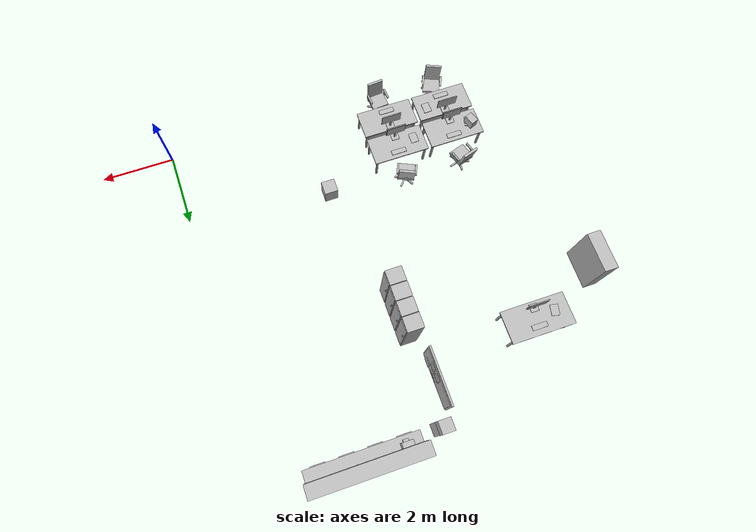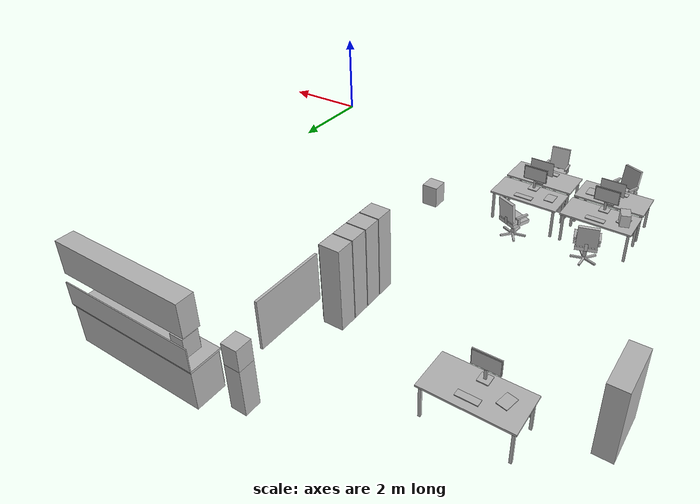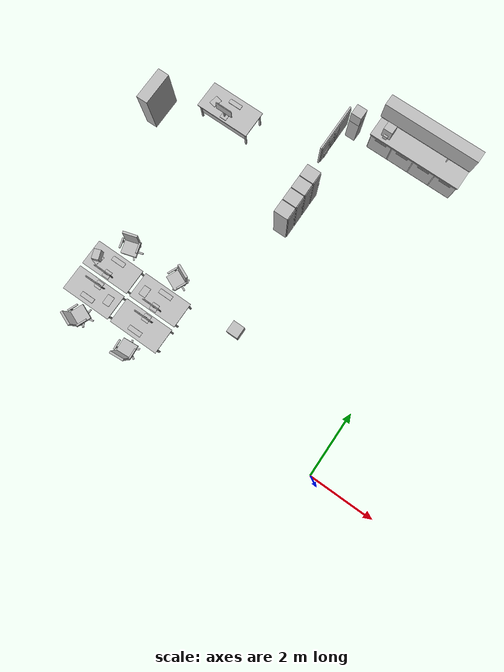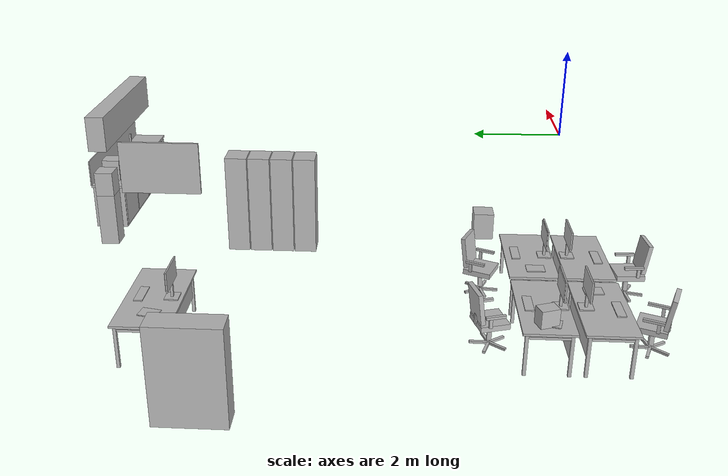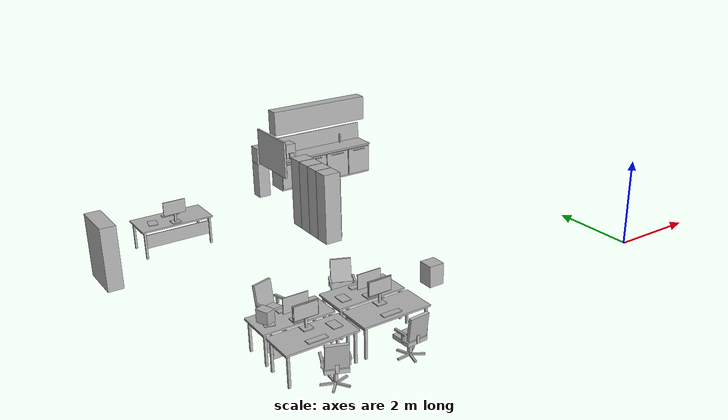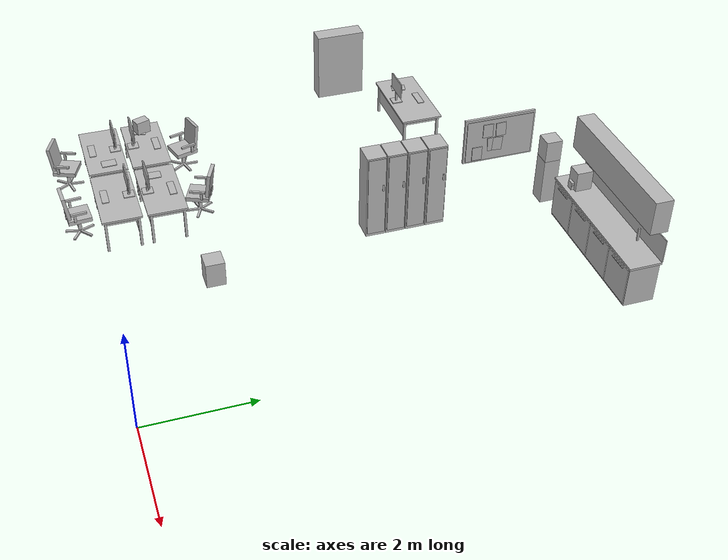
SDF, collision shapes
<sdf version="1.10">
 <model name="office_scene">
  <static>true</static>
  <link name="baseball_01">
   <pose>-9.40000 6.05000 1.03000 0.00000 0.00000 0.00000</pose>
   <visual name="baseball_01_visual">
    <geometry><mesh><uri>model://office_scene/meshes/baseball_01.glb</uri></mesh></geometry>
   </visual>
  </link>
  <link name="coffee_machine">
   <pose>-3.00000 9.60000 0.90000 0.00000 0.00000 0.00000</pose>
   <visual name="coffee_machine_visual">
    <geometry><mesh><uri>model://office_scene/meshes/coffee_machine.glb</uri></mesh></geometry>
   </visual>
   <collision name="coffee_machine_c0">
    <pose>-0.60379 -0.08456 -0.53333 0.00000 -0.00000 0.00000</pose>
    <geometry><box><size>0.3000 0.3400 0.4200</size></box></geometry>
   </collision>
   <collision name="coffee_machine_c1">
    <pose>-0.60379 -0.24456 -0.66333 0.00000 -0.00000 0.00000</pose>
    <geometry><box><size>0.1400 0.1400 0.1600</size></box></geometry>
   </collision>
   <collision name="coffee_machine_c2">
    <pose>-0.60379 -0.24456 -0.67333 0.00000 -0.00000 0.00000</pose>
    <geometry><box><size>0.1400 0.1200 0.1000</size></box></geometry>
   </collision>
  </link>
  <link name="cone_yellow">
   <pose>-3.40000 2.20000 0.26000 0.00000 0.00000 0.00000</pose>
   <visual name="cone_yellow_visual">
    <geometry><mesh><uri>model://office_scene/meshes/cone_yellow.glb</uri></mesh></geometry>
   </visual>
   <collision name="cone_yellow_c0">
    <pose>-0.60379 -0.08456 -0.72333 0.00000 -0.00000 0.00000</pose>
    <geometry><box><size>0.3800 0.3800 0.5200</size></box></geometry>
   </collision>
  </link>
  <link name="kitchen_counter">
   <pose>-1.90000 9.60000 0.00000 0.00000 0.00000 0.00000</pose>
   <visual name="kitchen_counter_visual">
    <geometry><mesh><uri>model://office_scene/meshes/kitchen_counter.glb</uri></mesh></geometry>
   </visual>
   <collision name="kitchen_counter_c0">
    <pose>-0.60379 -0.08456 -0.31333 0.00000 -0.00000 0.00000</pose>
    <geometry><box><size>3.0000 0.6200 0.8600</size></box></geometry>
   </collision>
   <collision name="kitchen_counter_c1">
    <pose>-1.72879 -0.40456 -0.30333 0.00000 -0.00000 0.00000</pose>
    <geometry><box><size>0.7200 0.0200 0.7800</size></box></geometry>
   </collision>
   <collision name="kitchen_counter_c2">
    <pose>-0.97879 -0.40456 -0.30333 0.00000 -0.00000 0.00000</pose>
    <geometry><box><size>0.7200 0.0200 0.7800</size></box></geometry>
   </collision>
   <collision name="kitchen_counter_c3">
    <pose>-0.22879 -0.40456 -0.30333 0.00000 -0.00000 0.00000</pose>
    <geometry><box><size>0.7200 0.0200 0.7800</size></box></geometry>
   </collision>
   <collision name="kitchen_counter_c4">
    <pose>0.52121 -0.40456 -0.30333 0.00000 -0.00000 0.00000</pose>
    <geometry><box><size>0.7200 0.0200 0.7800</size></box></geometry>
   </collision>
   <collision name="kitchen_counter_c5">
    <pose>-1.72879 -0.42956 0.03667 0.00000 -0.00000 0.00000</pose>
    <geometry><box><size>0.4000 0.0200 0.0200</size></box></geometry>
   </collision>
   <collision name="kitchen_counter_c6">
    <pose>-0.97879 -0.42956 0.03667 0.00000 -0.00000 0.00000</pose>
    <geometry><box><size>0.4000 0.0200 0.0200</size></box></geometry>
   </collision>
   <collision name="kitchen_counter_c7">
    <pose>-0.22879 -0.42956 0.03667 0.00000 -0.00000 0.00000</pose>
    <geometry><box><size>0.4000 0.0200 0.0200</size></box></geometry>
   </collision>
   <collision name="kitchen_counter_c8">
    <pose>0.52121 -0.42956 0.03667 0.00000 -0.00000 0.00000</pose>
    <geometry><box><size>0.4000 0.0200 0.0200</size></box></geometry>
   </collision>
   <collision name="kitchen_counter_c9">
    <pose>0.19621 -0.08456 0.14667 0.00000 -0.00000 0.00000</pose>
    <geometry><box><size>0.5000 0.4000 0.0200</size></box></geometry>
   </collision>
   <collision name="kitchen_counter_c10">
    <pose>-0.60379 0.24544 0.40667 0.00000 -0.00000 0.00000</pose>
    <geometry><box><size>3.0600 0.0200 0.5000</size></box></geometry>
   </collision>
   <collision name="kitchen_counter_c11">
    <pose>0.19621 0.13544 0.29667 0.00000 -0.00000 0.00000</pose>
    <geometry><box><size>0.0360 0.0360 0.2800</size></box></geometry>
   </collision>
   <collision name="kitchen_counter_c12">
    <pose>-0.60379 -0.08456 0.13667 0.00000 -0.00000 0.00000</pose>
    <geometry><box><size>3.0600 0.6600 0.0450</size></box></geometry>
   </collision>
   <collision name="kitchen_counter_c13">
    <pose>-0.60379 0.05544 1.20667 0.00000 -0.00000 0.00000</pose>
    <geometry><box><size>3.0000 0.3600 0.7000</size></box></geometry>
   </collision>
  </link>
  <link name="lockers">
   <pose>-4.05000 6.20000 0.00000 0.00000 0.00000 0.00000</pose>
   <visual name="lockers_visual">
    <geometry><mesh><uri>model://office_scene/meshes/lockers.glb</uri></mesh></geometry>
   </visual>
   <collision name="lockers_c0">
    <pose>-0.60379 -0.68456 0.18167 0.00000 -0.00000 0.00000</pose>
    <geometry><box><size>0.4500 0.4000 1.8500</size></box></geometry>
   </collision>
   <collision name="lockers_c1">
    <pose>-0.60379 -0.26456 0.18167 0.00000 -0.00000 0.00000</pose>
    <geometry><box><size>0.4500 0.4000 1.8500</size></box></geometry>
   </collision>
   <collision name="lockers_c2">
    <pose>-0.60379 0.15544 0.18167 0.00000 -0.00000 0.00000</pose>
    <geometry><box><size>0.4500 0.4000 1.8500</size></box></geometry>
   </collision>
   <collision name="lockers_c3">
    <pose>-0.60379 0.57544 0.18167 0.00000 -0.00000 0.00000</pose>
    <geometry><box><size>0.4500 0.4000 1.8500</size></box></geometry>
   </collision>
   <collision name="lockers_c4">
    <pose>-0.36379 -0.68456 0.20667 0.00000 -0.00000 0.00000</pose>
    <geometry><box><size>0.0200 0.3600 1.7500</size></box></geometry>
   </collision>
   <collision name="lockers_c5">
    <pose>-0.36379 -0.26456 0.20667 0.00000 -0.00000 0.00000</pose>
    <geometry><box><size>0.0200 0.3600 1.7500</size></box></geometry>
   </collision>
   <collision name="lockers_c6">
    <pose>-0.36379 0.15544 0.20667 0.00000 -0.00000 0.00000</pose>
    <geometry><box><size>0.0200 0.3600 1.7500</size></box></geometry>
   </collision>
   <collision name="lockers_c7">
    <pose>-0.36379 0.57544 0.20667 0.00000 -0.00000 0.00000</pose>
    <geometry><box><size>0.0200 0.3600 1.7500</size></box></geometry>
   </collision>
   <collision name="lockers_c8">
    <pose>-0.34379 -0.55456 0.40667 0.00000 -0.00000 0.00000</pose>
    <geometry><box><size>0.0200 0.0300 0.1400</size></box></geometry>
   </collision>
   <collision name="lockers_c9">
    <pose>-0.34379 -0.13456 0.40667 0.00000 -0.00000 0.00000</pose>
    <geometry><box><size>0.0200 0.0300 0.1400</size></box></geometry>
   </collision>
   <collision name="lockers_c10">
    <pose>-0.34379 0.28544 0.40667 0.00000 -0.00000 0.00000</pose>
    <geometry><box><size>0.0200 0.0300 0.1400</size></box></geometry>
   </collision>
   <collision name="lockers_c11">
    <pose>-0.34379 0.70544 0.40667 0.00000 -0.00000 0.00000</pose>
    <geometry><box><size>0.0200 0.0300 0.1400</size></box></geometry>
   </collision>
  </link>
  <link name="noticeboard">
   <pose>-4.14000 8.30000 1.60000 0.00000 0.00000 0.00000</pose>
   <visual name="noticeboard_visual">
    <geometry><mesh><uri>model://office_scene/meshes/noticeboard.glb</uri></mesh></geometry>
   </visual>
   <collision name="noticeboard_c0">
    <pose>-0.58379 -0.07582 -0.52668 0.04067 -0.00000 0.00000</pose>
    <geometry><box><size>0.0200 0.2100 0.2970</size></box></geometry>
   </collision>
   <collision name="noticeboard_c1">
    <pose>-0.58379 -0.35318 -0.52061 -0.00277 -0.00000 0.00000</pose>
    <geometry><box><size>0.0200 0.2100 0.2970</size></box></geometry>
   </collision>
   <collision name="noticeboard_c2">
    <pose>-0.58379 -0.55973 -1.02131 -0.00166 -0.00000 0.00000</pose>
    <geometry><box><size>0.0200 0.2100 0.2970</size></box></geometry>
   </collision>
   <collision name="noticeboard_c3">
    <pose>-0.58379 -0.13380 -0.85423 -0.07186 -0.00000 0.00000</pose>
    <geometry><box><size>0.0200 0.2100 0.2970</size></box></geometry>
   </collision>
   <collision name="noticeboard_c4">
    <pose>-0.58379 -0.24060 -0.84632 0.06805 -0.00000 0.00000</pose>
    <geometry><box><size>0.0200 0.2100 0.2970</size></box></geometry>
   </collision>
   <collision name="noticeboard_c5">
    <pose>-0.60379 -0.08456 -0.74333 0.00000 -0.00000 0.00000</pose>
    <geometry><box><size>0.0200 1.4200 0.9200</size></box></geometry>
   </collision>
   <collision name="noticeboard_c6">
    <pose>-0.64379 -0.08456 -0.74333 0.00000 -0.00000 0.00000</pose>
    <geometry><box><size>0.0500 1.5000 1.0000</size></box></geometry>
   </collision>
  </link>
  <link name="podA_workstation0">
   <pose>-7.35000 1.65000 0.00000 0.00000 0.00000 0.00000</pose>
   <visual name="podA_workstation0_visual">
    <geometry><mesh><uri>model://office_scene/meshes/podA_workstation0.glb</uri></mesh></geometry>
   </visual>
   <collision name="podA_workstation0_c0">
    <pose>-0.85870 0.64047 -0.07333 0.00000 -0.00000 0.28915</pose>
    <geometry><box><size>0.0500 0.3200 0.0400</size></box></geometry>
   </collision>
   <collision name="podA_workstation0_c1">
    <pose>-0.36029 0.78874 -0.07333 0.00000 -0.00000 0.28915</pose>
    <geometry><box><size>0.0500 0.3200 0.0400</size></box></geometry>
   </collision>
   <collision name="podA_workstation0_c2">
    <pose>-0.88151 0.71715 -0.16333 0.00000 -0.00000 0.28915</pose>
    <geometry><box><size>0.0400 0.0500 0.1600</size></box></geometry>
   </collision>
   <collision name="podA_workstation0_c3">
    <pose>-0.38310 0.86542 -0.16333 0.00000 -0.00000 0.28915</pose>
    <geometry><box><size>0.0400 0.0500 0.1600</size></box></geometry>
   </collision>
   <collision name="podA_workstation0_c4">
    <pose>-0.67080 0.92068 0.04667 -0.13963 -0.00000 0.28915</pose>
    <geometry><box><size>0.4500 0.0700 0.5200</size></box></geometry>
   </collision>
   <collision name="podA_workstation0_c5">
    <pose>-0.66652 0.90630 -0.22333 0.00000 -0.00000 0.28915</pose>
    <geometry><box><size>0.0700 0.0600 0.1800</size></box></geometry>
   </collision>
   <collision name="podA_workstation0_c6">
    <pose>-0.60379 0.69544 -0.47333 0.00000 -0.00000 0.00000</pose>
    <geometry><box><size>0.0700 0.0700 0.2800</size></box></geometry>
   </collision>
   <collision name="podA_workstation0_c7">
    <pose>-0.60379 0.69544 -0.28333 0.00000 -0.00000 0.28915</pose>
    <geometry><box><size>0.4800 0.4700 0.0900</size></box></geometry>
   </collision>
   <collision name="podA_workstation0_c8">
    <pose>-0.46002 0.73821 -0.67333 0.00000 -0.00000 0.28915</pose>
    <geometry><box><size>0.3000 0.0450 0.0350</size></box></geometry>
   </collision>
   <collision name="podA_workstation0_c9">
    <pose>-0.60004 0.84539 -0.67333 0.00000 -0.00000 1.54578</pose>
    <geometry><box><size>0.3000 0.0450 0.0350</size></box></geometry>
   </collision>
   <collision name="podA_workstation0_c10">
    <pose>-0.74524 0.74534 -0.67333 0.00000 -0.00000 2.80242</pose>
    <geometry><box><size>0.3000 0.0450 0.0350</size></box></geometry>
   </collision>
   <collision name="podA_workstation0_c11">
    <pose>-0.69496 0.57633 -0.67333 0.00000 -0.00000 -2.22413</pose>
    <geometry><box><size>0.3000 0.0450 0.0350</size></box></geometry>
   </collision>
   <collision name="podA_workstation0_c12">
    <pose>-0.51868 0.57192 -0.67333 0.00000 -0.00000 -0.96749</pose>
    <geometry><box><size>0.3000 0.0450 0.0350</size></box></geometry>
   </collision>
   <collision name="podA_workstation0_c13">
    <pose>-0.55379 0.13544 0.00567 0.00000 -0.00000 -3.14159</pose>
    <geometry><box><size>0.4300 0.1400 0.0200</size></box></geometry>
   </collision>
   <collision name="podA_workstation0_c14">
    <pose>-1.10379 -0.13456 0.00267 0.00000 -0.00000 2.87056</pose>
    <geometry><box><size>0.2200 0.3000 0.0200</size></box></geometry>
   </collision>
   <collision name="podA_workstation0_c15">
    <pose>0.12621 0.24544 -0.39333 0.00000 -0.00000 -3.14159</pose>
    <geometry><box><size>0.0500 0.0500 0.7000</size></box></geometry>
   </collision>
   <collision name="podA_workstation0_c16">
    <pose>0.12621 -0.41456 -0.39333 0.00000 -0.00000 -3.14159</pose>
    <geometry><box><size>0.0500 0.0500 0.7000</size></box></geometry>
   </collision>
   <collision name="podA_workstation0_c17">
    <pose>-1.33379 0.24544 -0.39333 0.00000 -0.00000 -3.14159</pose>
    <geometry><box><size>0.0500 0.0500 0.7000</size></box></geometry>
   </collision>
   <collision name="podA_workstation0_c18">
    <pose>-1.33379 -0.41456 -0.39333 0.00000 -0.00000 -3.14159</pose>
    <geometry><box><size>0.0500 0.0500 0.7000</size></box></geometry>
   </collision>
   <collision name="podA_workstation0_c19">
    <pose>-0.60379 -0.40456 -0.30333 0.00000 -0.00000 -3.14159</pose>
    <geometry><box><size>1.4000 0.0200 0.3400</size></box></geometry>
   </collision>
   <collision name="podA_workstation0_c20">
    <pose>0.12621 -0.08456 -0.10333 0.00000 -0.00000 -3.14159</pose>
    <geometry><box><size>0.0400 0.6600 0.0400</size></box></geometry>
   </collision>
   <collision name="podA_workstation0_c21">
    <pose>-1.33379 -0.08456 -0.10333 0.00000 -0.00000 -3.14159</pose>
    <geometry><box><size>0.0400 0.6600 0.0400</size></box></geometry>
   </collision>
   <collision name="podA_workstation0_c22">
    <pose>-0.60379 -0.08456 -0.02233 0.00000 -0.00000 -3.14159</pose>
    <geometry><box><size>1.6000 0.8000 0.0380</size></box></geometry>
   </collision>
   <collision name="podA_workstation0_c23">
    <pose>-0.60379 -0.34456 0.00667 0.00000 -0.00000 0.00000</pose>
    <geometry><box><size>0.2200 0.2200 0.0200</size></box></geometry>
   </collision>
   <collision name="podA_workstation0_c24">
    <pose>-0.60379 -0.34456 0.11667 0.00000 -0.00000 -3.14159</pose>
    <geometry><box><size>0.0500 0.0400 0.2000</size></box></geometry>
   </collision>
   <collision name="podA_workstation0_c25">
    <pose>-0.60379 -0.34456 0.38667 0.00000 -0.00000 -3.14159</pose>
    <geometry><box><size>0.5600 0.0220 0.3400</size></box></geometry>
   </collision>
   <collision name="podA_workstation0_c26">
    <pose>-0.60379 -0.33056 0.38667 0.00000 -0.00000 -3.14159</pose>
    <geometry><box><size>0.5300 0.0200 0.3050</size></box></geometry>
   </collision>
  </link>
  <link name="podA_workstation1">
   <pose>-5.65000 1.65000 0.00000 0.00000 0.00000 0.00000</pose>
   <visual name="podA_workstation1_visual">
    <geometry><mesh><uri>model://office_scene/meshes/podA_workstation1.glb</uri></mesh></geometry>
   </visual>
   <collision name="podA_workstation1_c0">
    <pose>-0.83350 0.81886 -0.07333 0.00000 -0.00000 -0.41625</pose>
    <geometry><box><size>0.0500 0.3200 0.0400</size></box></geometry>
   </collision>
   <collision name="podA_workstation1_c1">
    <pose>-0.35790 0.60860 -0.07333 0.00000 -0.00000 -0.41625</pose>
    <geometry><box><size>0.0500 0.3200 0.0400</size></box></geometry>
   </collision>
   <collision name="podA_workstation1_c2">
    <pose>-0.80115 0.89203 -0.16333 0.00000 -0.00000 -0.41625</pose>
    <geometry><box><size>0.0400 0.0500 0.1600</size></box></geometry>
   </collision>
   <collision name="podA_workstation1_c3">
    <pose>-0.32556 0.68177 -0.16333 0.00000 -0.00000 -0.41625</pose>
    <geometry><box><size>0.0400 0.0500 0.1600</size></box></geometry>
   </collision>
   <collision name="podA_workstation1_c4">
    <pose>-0.50877 0.91037 0.04667 -0.13963 -0.00000 -0.41625</pose>
    <geometry><box><size>0.4500 0.0700 0.5200</size></box></geometry>
   </collision>
   <collision name="podA_workstation1_c5">
    <pose>-0.51484 0.89665 -0.22333 0.00000 -0.00000 -0.41625</pose>
    <geometry><box><size>0.0700 0.0600 0.1800</size></box></geometry>
   </collision>
   <collision name="podA_workstation1_c6">
    <pose>-0.60379 0.69544 -0.47333 0.00000 -0.00000 0.00000</pose>
    <geometry><box><size>0.0700 0.0700 0.2800</size></box></geometry>
   </collision>
   <collision name="podA_workstation1_c7">
    <pose>-0.60379 0.69544 -0.28333 0.00000 -0.00000 -0.41625</pose>
    <geometry><box><size>0.4800 0.4700 0.0900</size></box></geometry>
   </collision>
   <collision name="podA_workstation1_c8">
    <pose>-0.46660 0.63479 -0.67333 0.00000 -0.00000 -0.41625</pose>
    <geometry><box><size>0.3000 0.0450 0.0350</size></box></geometry>
   </collision>
   <collision name="podA_workstation1_c9">
    <pose>-0.50371 0.80717 -0.67333 0.00000 -0.00000 0.84038</pose>
    <geometry><box><size>0.3000 0.0450 0.0350</size></box></geometry>
   </collision>
   <collision name="podA_workstation1_c10">
    <pose>-0.67913 0.82514 -0.67333 0.00000 -0.00000 2.09702</pose>
    <geometry><box><size>0.3000 0.0450 0.0350</size></box></geometry>
   </collision>
   <collision name="podA_workstation1_c11">
    <pose>-0.75043 0.66387 -0.67333 0.00000 -0.00000 -2.92953</pose>
    <geometry><box><size>0.3000 0.0450 0.0350</size></box></geometry>
   </collision>
   <collision name="podA_workstation1_c12">
    <pose>-0.61908 0.54622 -0.67333 0.00000 -0.00000 -1.67289</pose>
    <geometry><box><size>0.3000 0.0450 0.0350</size></box></geometry>
   </collision>
   <collision name="podA_workstation1_c13">
    <pose>-0.55379 0.13544 0.00567 0.00000 -0.00000 -3.14159</pose>
    <geometry><box><size>0.4300 0.1400 0.0200</size></box></geometry>
   </collision>
   <collision name="podA_workstation1_c14">
    <pose>-1.10379 -0.13456 0.00267 0.00000 -0.00000 -3.13713</pose>
    <geometry><box><size>0.2200 0.3000 0.0200</size></box></geometry>
   </collision>
   <collision name="podA_workstation1_c15">
    <pose>0.12621 0.24544 -0.39333 0.00000 -0.00000 -3.14159</pose>
    <geometry><box><size>0.0500 0.0500 0.7000</size></box></geometry>
   </collision>
   <collision name="podA_workstation1_c16">
    <pose>0.12621 -0.41456 -0.39333 0.00000 -0.00000 -3.14159</pose>
    <geometry><box><size>0.0500 0.0500 0.7000</size></box></geometry>
   </collision>
   <collision name="podA_workstation1_c17">
    <pose>-1.33379 0.24544 -0.39333 0.00000 -0.00000 -3.14159</pose>
    <geometry><box><size>0.0500 0.0500 0.7000</size></box></geometry>
   </collision>
   <collision name="podA_workstation1_c18">
    <pose>-1.33379 -0.41456 -0.39333 0.00000 -0.00000 -3.14159</pose>
    <geometry><box><size>0.0500 0.0500 0.7000</size></box></geometry>
   </collision>
   <collision name="podA_workstation1_c19">
    <pose>-0.60379 -0.40456 -0.30333 0.00000 -0.00000 -3.14159</pose>
    <geometry><box><size>1.4000 0.0200 0.3400</size></box></geometry>
   </collision>
   <collision name="podA_workstation1_c20">
    <pose>0.12621 -0.08456 -0.10333 0.00000 -0.00000 -3.14159</pose>
    <geometry><box><size>0.0400 0.6600 0.0400</size></box></geometry>
   </collision>
   <collision name="podA_workstation1_c21">
    <pose>-1.33379 -0.08456 -0.10333 0.00000 -0.00000 -3.14159</pose>
    <geometry><box><size>0.0400 0.6600 0.0400</size></box></geometry>
   </collision>
   <collision name="podA_workstation1_c22">
    <pose>-0.60379 -0.08456 -0.02233 0.00000 -0.00000 -3.14159</pose>
    <geometry><box><size>1.6000 0.8000 0.0380</size></box></geometry>
   </collision>
   <collision name="podA_workstation1_c23">
    <pose>-0.60379 -0.34456 0.00667 0.00000 -0.00000 0.00000</pose>
    <geometry><box><size>0.2200 0.2200 0.0200</size></box></geometry>
   </collision>
   <collision name="podA_workstation1_c24">
    <pose>-0.60379 -0.34456 0.11667 0.00000 -0.00000 -3.14159</pose>
    <geometry><box><size>0.0500 0.0400 0.2000</size></box></geometry>
   </collision>
   <collision name="podA_workstation1_c25">
    <pose>-0.60379 -0.34456 0.38667 0.00000 -0.00000 -3.14159</pose>
    <geometry><box><size>0.5600 0.0220 0.3400</size></box></geometry>
   </collision>
   <collision name="podA_workstation1_c26">
    <pose>-0.60379 -0.33056 0.38667 0.00000 -0.00000 -3.14159</pose>
    <geometry><box><size>0.5300 0.0200 0.3050</size></box></geometry>
   </collision>
  </link>
  <link name="podA_workstation2">
   <pose>-7.35000 0.75000 0.00000 0.00000 0.00000 0.00000</pose>
   <visual name="podA_workstation2_visual">
    <geometry><mesh><uri>model://office_scene/meshes/podA_workstation2.glb</uri></mesh></geometry>
   </visual>
   <collision name="podA_workstation2_c0">
    <pose>-0.37172 -0.98349 -0.07333 0.00000 -0.00000 2.74479</pose>
    <geometry><box><size>0.0500 0.3200 0.0400</size></box></geometry>
   </collision>
   <collision name="podA_workstation2_c1">
    <pose>-0.85132 -0.78253 -0.07333 0.00000 -0.00000 2.74479</pose>
    <geometry><box><size>0.0500 0.3200 0.0400</size></box></geometry>
   </collision>
   <collision name="podA_workstation2_c2">
    <pose>-0.40264 -1.05728 -0.16333 0.00000 -0.00000 2.74479</pose>
    <geometry><box><size>0.0400 0.0500 0.1600</size></box></geometry>
   </collision>
   <collision name="podA_workstation2_c3">
    <pose>-0.88224 -0.85631 -0.16333 0.00000 -0.00000 2.74479</pose>
    <geometry><box><size>0.0400 0.0500 0.1600</size></box></geometry>
   </collision>
   <collision name="podA_workstation2_c4">
    <pose>-0.69461 -1.08130 0.04667 -0.13963 -0.00000 2.74479</pose>
    <geometry><box><size>0.4500 0.0700 0.5200</size></box></geometry>
   </collision>
   <collision name="podA_workstation2_c5">
    <pose>-0.68881 -1.06747 -0.22333 0.00000 -0.00000 2.74479</pose>
    <geometry><box><size>0.0700 0.0600 0.1800</size></box></geometry>
   </collision>
   <collision name="podA_workstation2_c6">
    <pose>-0.60379 -0.86456 -0.47333 0.00000 -0.00000 0.00000</pose>
    <geometry><box><size>0.0700 0.0700 0.2800</size></box></geometry>
   </collision>
   <collision name="podA_workstation2_c7">
    <pose>-0.60379 -0.86456 -0.28333 0.00000 -0.00000 2.74479</pose>
    <geometry><box><size>0.4800 0.4700 0.0900</size></box></geometry>
   </collision>
   <collision name="podA_workstation2_c8">
    <pose>-0.74213 -0.80659 -0.67333 0.00000 -0.00000 2.74479</pose>
    <geometry><box><size>0.3000 0.0450 0.0350</size></box></geometry>
   </collision>
   <collision name="podA_workstation2_c9">
    <pose>-0.70167 -0.97822 -0.67333 0.00000 -0.00000 -2.28176</pose>
    <geometry><box><size>0.3000 0.0450 0.0350</size></box></geometry>
   </collision>
   <collision name="podA_workstation2_c10">
    <pose>-0.52594 -0.99278 -0.67333 0.00000 -0.00000 -1.02512</pose>
    <geometry><box><size>0.3000 0.0450 0.0350</size></box></geometry>
   </collision>
   <collision name="podA_workstation2_c11">
    <pose>-0.45779 -0.83014 -0.67333 0.00000 -0.00000 0.23152</pose>
    <geometry><box><size>0.3000 0.0450 0.0350</size></box></geometry>
   </collision>
   <collision name="podA_workstation2_c12">
    <pose>-0.59141 -0.71507 -0.67333 0.00000 -0.00000 1.48816</pose>
    <geometry><box><size>0.3000 0.0450 0.0350</size></box></geometry>
   </collision>
   <collision name="podA_workstation2_c13">
    <pose>-0.65379 -0.30456 0.00567 0.00000 -0.00000 0.00000</pose>
    <geometry><box><size>0.4300 0.1400 0.0200</size></box></geometry>
   </collision>
   <collision name="podA_workstation2_c14">
    <pose>-0.10379 -0.03456 0.00267 0.00000 -0.00000 0.03063</pose>
    <geometry><box><size>0.2200 0.3000 0.0200</size></box></geometry>
   </collision>
   <collision name="podA_workstation2_c15">
    <pose>-1.33379 -0.41456 -0.39333 0.00000 -0.00000 0.00000</pose>
    <geometry><box><size>0.0500 0.0500 0.7000</size></box></geometry>
   </collision>
   <collision name="podA_workstation2_c16">
    <pose>-1.33379 0.24544 -0.39333 0.00000 -0.00000 0.00000</pose>
    <geometry><box><size>0.0500 0.0500 0.7000</size></box></geometry>
   </collision>
   <collision name="podA_workstation2_c17">
    <pose>0.12621 -0.41456 -0.39333 0.00000 -0.00000 0.00000</pose>
    <geometry><box><size>0.0500 0.0500 0.7000</size></box></geometry>
   </collision>
   <collision name="podA_workstation2_c18">
    <pose>0.12621 0.24544 -0.39333 0.00000 -0.00000 0.00000</pose>
    <geometry><box><size>0.0500 0.0500 0.7000</size></box></geometry>
   </collision>
   <collision name="podA_workstation2_c19">
    <pose>-0.60379 0.23544 -0.30333 0.00000 -0.00000 0.00000</pose>
    <geometry><box><size>1.4000 0.0200 0.3400</size></box></geometry>
   </collision>
   <collision name="podA_workstation2_c20">
    <pose>-1.33379 -0.08456 -0.10333 0.00000 -0.00000 0.00000</pose>
    <geometry><box><size>0.0400 0.6600 0.0400</size></box></geometry>
   </collision>
   <collision name="podA_workstation2_c21">
    <pose>0.12621 -0.08456 -0.10333 0.00000 -0.00000 0.00000</pose>
    <geometry><box><size>0.0400 0.6600 0.0400</size></box></geometry>
   </collision>
   <collision name="podA_workstation2_c22">
    <pose>-0.60379 -0.08456 -0.02233 0.00000 -0.00000 0.00000</pose>
    <geometry><box><size>1.6000 0.8000 0.0380</size></box></geometry>
   </collision>
   <collision name="podA_workstation2_c23">
    <pose>-0.60379 0.17544 0.00667 0.00000 -0.00000 0.00000</pose>
    <geometry><box><size>0.2200 0.2200 0.0200</size></box></geometry>
   </collision>
   <collision name="podA_workstation2_c24">
    <pose>-0.60379 0.17544 0.11667 0.00000 -0.00000 0.00000</pose>
    <geometry><box><size>0.0500 0.0400 0.2000</size></box></geometry>
   </collision>
   <collision name="podA_workstation2_c25">
    <pose>-0.60379 0.17544 0.38667 0.00000 -0.00000 0.00000</pose>
    <geometry><box><size>0.5600 0.0220 0.3400</size></box></geometry>
   </collision>
   <collision name="podA_workstation2_c26">
    <pose>-0.60379 0.16144 0.38667 0.00000 -0.00000 0.00000</pose>
    <geometry><box><size>0.5300 0.0200 0.3050</size></box></geometry>
   </collision>
  </link>
  <link name="podA_workstation3">
   <pose>-5.65000 0.75000 0.00000 0.00000 0.00000 0.00000</pose>
   <visual name="podA_workstation3_visual">
    <geometry><mesh><uri>model://office_scene/meshes/podA_workstation3.glb</uri></mesh></geometry>
   </visual>
   <collision name="podA_workstation3_c0">
    <pose>-0.34302 -0.86510 -0.07333 0.00000 -0.00000 -3.06690</pose>
    <geometry><box><size>0.0500 0.3200 0.0400</size></box></geometry>
   </collision>
   <collision name="podA_workstation3_c1">
    <pose>-0.86157 -0.90391 -0.07333 0.00000 -0.00000 -3.06690</pose>
    <geometry><box><size>0.0500 0.3200 0.0400</size></box></geometry>
   </collision>
   <collision name="podA_workstation3_c2">
    <pose>-0.33705 -0.94488 -0.16333 0.00000 -0.00000 -3.06690</pose>
    <geometry><box><size>0.0400 0.0500 0.1600</size></box></geometry>
   </collision>
   <collision name="podA_workstation3_c3">
    <pose>-0.85560 -0.98369 -0.16333 0.00000 -0.00000 -3.06690</pose>
    <geometry><box><size>0.0400 0.0500 0.1600</size></box></geometry>
   </collision>
   <collision name="podA_workstation3_c4">
    <pose>-0.58625 -1.09891 0.04667 -0.13963 -0.00000 -3.06690</pose>
    <geometry><box><size>0.4500 0.0700 0.5200</size></box></geometry>
   </collision>
   <collision name="podA_workstation3_c5">
    <pose>-0.58737 -1.08395 -0.22333 0.00000 -0.00000 -3.06690</pose>
    <geometry><box><size>0.0700 0.0600 0.1800</size></box></geometry>
   </collision>
   <collision name="podA_workstation3_c6">
    <pose>-0.60379 -0.86456 -0.47333 0.00000 -0.00000 0.00000</pose>
    <geometry><box><size>0.0700 0.0700 0.2800</size></box></geometry>
   </collision>
   <collision name="podA_workstation3_c7">
    <pose>-0.60379 -0.86456 -0.28333 0.00000 -0.00000 -3.06690</pose>
    <geometry><box><size>0.4800 0.4700 0.0900</size></box></geometry>
   </collision>
   <collision name="podA_workstation3_c8">
    <pose>-0.75337 -0.87576 -0.67333 0.00000 -0.00000 -3.06690</pose>
    <geometry><box><size>0.3000 0.0450 0.0350</size></box></geometry>
   </collision>
   <collision name="podA_workstation3_c9">
    <pose>-0.63937 -1.01028 -0.67333 0.00000 -0.00000 -1.81026</pose>
    <geometry><box><size>0.3000 0.0450 0.0350</size></box></geometry>
   </collision>
   <collision name="podA_workstation3_c10">
    <pose>-0.47620 -0.94343 -0.67333 0.00000 -0.00000 -0.55362</pose>
    <geometry><box><size>0.3000 0.0450 0.0350</size></box></geometry>
   </collision>
   <collision name="podA_workstation3_c11">
    <pose>-0.48936 -0.76758 -0.67333 0.00000 -0.00000 0.70302</pose>
    <geometry><box><size>0.3000 0.0450 0.0350</size></box></geometry>
   </collision>
   <collision name="podA_workstation3_c12">
    <pose>-0.66066 -0.72576 -0.67333 0.00000 -0.00000 1.95965</pose>
    <geometry><box><size>0.3000 0.0450 0.0350</size></box></geometry>
   </collision>
   <collision name="podA_workstation3_c13">
    <pose>-0.65379 -0.30456 0.00567 0.00000 -0.00000 0.00000</pose>
    <geometry><box><size>0.4300 0.1400 0.0200</size></box></geometry>
   </collision>
   <collision name="podA_workstation3_c14">
    <pose>-1.33379 -0.41456 -0.39333 0.00000 -0.00000 0.00000</pose>
    <geometry><box><size>0.0500 0.0500 0.7000</size></box></geometry>
   </collision>
   <collision name="podA_workstation3_c15">
    <pose>-1.33379 0.24544 -0.39333 0.00000 -0.00000 0.00000</pose>
    <geometry><box><size>0.0500 0.0500 0.7000</size></box></geometry>
   </collision>
   <collision name="podA_workstation3_c16">
    <pose>0.12621 -0.41456 -0.39333 0.00000 -0.00000 0.00000</pose>
    <geometry><box><size>0.0500 0.0500 0.7000</size></box></geometry>
   </collision>
   <collision name="podA_workstation3_c17">
    <pose>0.12621 0.24544 -0.39333 0.00000 -0.00000 0.00000</pose>
    <geometry><box><size>0.0500 0.0500 0.7000</size></box></geometry>
   </collision>
   <collision name="podA_workstation3_c18">
    <pose>-0.60379 0.23544 -0.30333 0.00000 -0.00000 0.00000</pose>
    <geometry><box><size>1.4000 0.0200 0.3400</size></box></geometry>
   </collision>
   <collision name="podA_workstation3_c19">
    <pose>-1.33379 -0.08456 -0.10333 0.00000 -0.00000 0.00000</pose>
    <geometry><box><size>0.0400 0.6600 0.0400</size></box></geometry>
   </collision>
   <collision name="podA_workstation3_c20">
    <pose>0.12621 -0.08456 -0.10333 0.00000 -0.00000 0.00000</pose>
    <geometry><box><size>0.0400 0.6600 0.0400</size></box></geometry>
   </collision>
   <collision name="podA_workstation3_c21">
    <pose>-0.60379 -0.08456 -0.02233 0.00000 -0.00000 0.00000</pose>
    <geometry><box><size>1.6000 0.8000 0.0380</size></box></geometry>
   </collision>
   <collision name="podA_workstation3_c22">
    <pose>-0.60379 0.17544 0.00667 0.00000 -0.00000 0.00000</pose>
    <geometry><box><size>0.2200 0.2200 0.0200</size></box></geometry>
   </collision>
   <collision name="podA_workstation3_c23">
    <pose>-0.60379 0.17544 0.11667 0.00000 -0.00000 0.00000</pose>
    <geometry><box><size>0.0500 0.0400 0.2000</size></box></geometry>
   </collision>
   <collision name="podA_workstation3_c24">
    <pose>-0.60379 0.17544 0.38667 0.00000 -0.00000 0.00000</pose>
    <geometry><box><size>0.5600 0.0220 0.3400</size></box></geometry>
   </collision>
   <collision name="podA_workstation3_c25">
    <pose>-0.60379 0.16144 0.38667 0.00000 -0.00000 0.00000</pose>
    <geometry><box><size>0.5300 0.0200 0.3050</size></box></geometry>
   </collision>
  </link>
  <link name="private_office_desk">
   <pose>-7.40000 7.60000 0.00000 0.00000 0.00000 0.00000</pose>
   <visual name="private_office_desk_visual">
    <geometry><mesh><uri>model://office_scene/meshes/private_office_desk.glb</uri></mesh></geometry>
   </visual>
   <collision name="private_office_desk_c0">
    <pose>-0.55379 0.13544 0.00567 0.00000 -0.00000 -3.14159</pose>
    <geometry><box><size>0.4300 0.1400 0.0200</size></box></geometry>
   </collision>
   <collision name="private_office_desk_c1">
    <pose>-1.10379 -0.13456 0.00267 0.00000 -0.00000 2.93611</pose>
    <geometry><box><size>0.2200 0.3000 0.0200</size></box></geometry>
   </collision>
   <collision name="private_office_desk_c2">
    <pose>0.22621 0.29544 -0.39333 0.00000 -0.00000 -3.14159</pose>
    <geometry><box><size>0.0500 0.0500 0.7000</size></box></geometry>
   </collision>
   <collision name="private_office_desk_c3">
    <pose>0.22621 -0.46456 -0.39333 0.00000 -0.00000 -3.14159</pose>
    <geometry><box><size>0.0500 0.0500 0.7000</size></box></geometry>
   </collision>
   <collision name="private_office_desk_c4">
    <pose>-1.43379 0.29544 -0.39333 0.00000 -0.00000 -3.14159</pose>
    <geometry><box><size>0.0500 0.0500 0.7000</size></box></geometry>
   </collision>
   <collision name="private_office_desk_c5">
    <pose>-1.43379 -0.46456 -0.39333 0.00000 -0.00000 -3.14159</pose>
    <geometry><box><size>0.0500 0.0500 0.7000</size></box></geometry>
   </collision>
   <collision name="private_office_desk_c6">
    <pose>-0.60379 -0.45456 -0.30333 0.00000 -0.00000 -3.14159</pose>
    <geometry><box><size>1.6000 0.0200 0.3400</size></box></geometry>
   </collision>
   <collision name="private_office_desk_c7">
    <pose>0.22621 -0.08456 -0.10333 0.00000 -0.00000 -3.14159</pose>
    <geometry><box><size>0.0400 0.7600 0.0400</size></box></geometry>
   </collision>
   <collision name="private_office_desk_c8">
    <pose>-1.43379 -0.08456 -0.10333 0.00000 -0.00000 -3.14159</pose>
    <geometry><box><size>0.0400 0.7600 0.0400</size></box></geometry>
   </collision>
   <collision name="private_office_desk_c9">
    <pose>-0.60379 -0.08456 -0.02233 0.00000 -0.00000 -3.14159</pose>
    <geometry><box><size>1.8000 0.9000 0.0380</size></box></geometry>
   </collision>
   <collision name="private_office_desk_c10">
    <pose>-0.60379 -0.36456 0.00667 0.00000 -0.00000 0.00000</pose>
    <geometry><box><size>0.2200 0.2200 0.0200</size></box></geometry>
   </collision>
   <collision name="private_office_desk_c11">
    <pose>-0.60379 -0.36456 0.11667 0.00000 -0.00000 -3.14159</pose>
    <geometry><box><size>0.0500 0.0400 0.2000</size></box></geometry>
   </collision>
   <collision name="private_office_desk_c12">
    <pose>-0.60379 -0.36456 0.38667 0.00000 -0.00000 -3.14159</pose>
    <geometry><box><size>0.5600 0.0220 0.3400</size></box></geometry>
   </collision>
   <collision name="private_office_desk_c13">
    <pose>-0.60379 -0.35056 0.38667 0.00000 -0.00000 -3.14159</pose>
    <geometry><box><size>0.5300 0.0200 0.3050</size></box></geometry>
   </collision>
  </link>
  <link name="rubber_duck_toy">
   <pose>-7.87000 1.67000 0.74000 0.00000 0.00000 0.00000</pose>
   <visual name="rubber_duck_toy_visual">
    <geometry><mesh><uri>model://office_scene/meshes/rubber_duck_toy.glb</uri></mesh></geometry>
   </visual>
   <collision name="rubber_duck_toy_c0">
    <pose>-0.60513 -0.08089 -0.60061 0.00000 -0.00000 -2.79253</pose>
    <geometry><box><size>0.2135 0.3000 0.2855</size></box></geometry>
   </collision>
  </link>
  <link name="water_cooler">
   <pose>-4.00000 9.40000 0.00000 0.00000 0.00000 0.00000</pose>
   <visual name="water_cooler_visual">
    <geometry><mesh><uri>model://office_scene/meshes/water_cooler.glb</uri></mesh></geometry>
   </visual>
   <collision name="water_cooler_c0">
    <pose>-0.60379 -0.08456 -0.24333 0.00000 -0.00000 0.00000</pose>
    <geometry><box><size>0.3400 0.3400 1.0000</size></box></geometry>
   </collision>
   <collision name="water_cooler_c1">
    <pose>-0.60379 -0.08456 0.48667 0.00000 -0.00000 0.00000</pose>
    <geometry><box><size>0.3400 0.3400 0.4600</size></box></geometry>
   </collision>
  </link>
  <link name="wooden_display_shelves_01">
   <pose>-9.40000 6.60000 0.00000 0.00000 0.00000 0.00000</pose>
   <visual name="wooden_display_shelves_01_visual">
    <geometry><mesh><uri>model://office_scene/meshes/wooden_display_shelves_01.glb</uri></mesh></geometry>
   </visual>
   <collision name="wooden_display_shelves_01_c0">
    <pose>-0.60379 -0.08456 0.03520 0.00000 -0.00000 -1.57080</pose>
    <geometry><box><size>1.0778 0.3715 1.5562</size></box></geometry>
   </collision>
  </link>
 </model>
</sdf>
